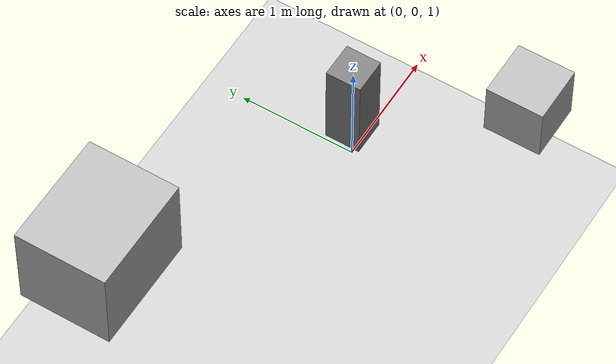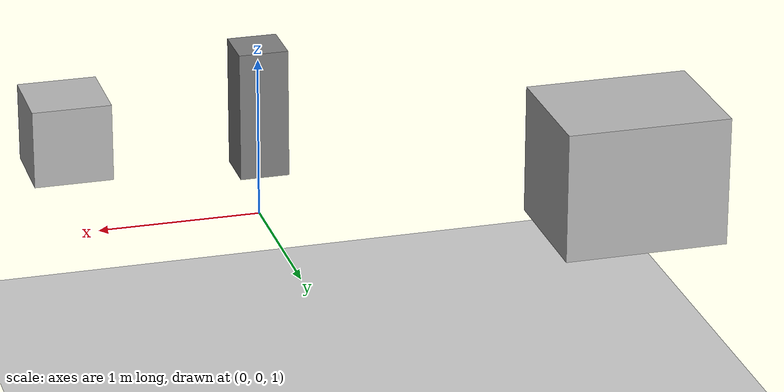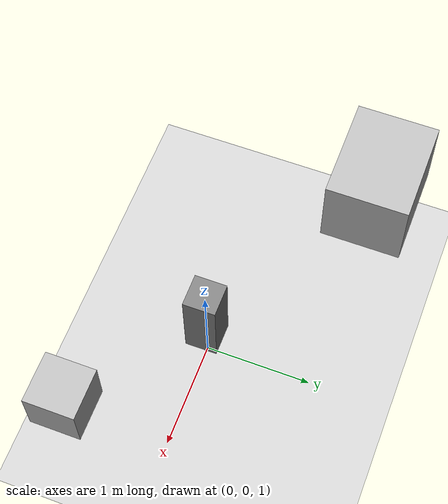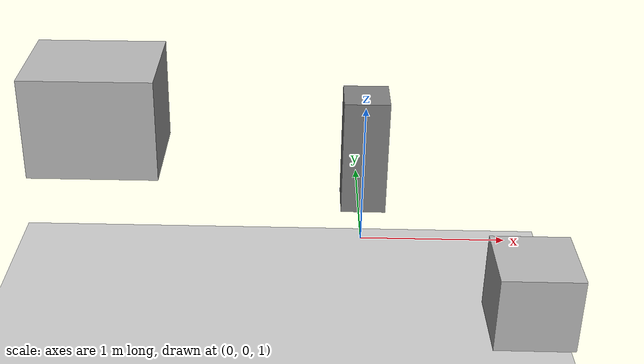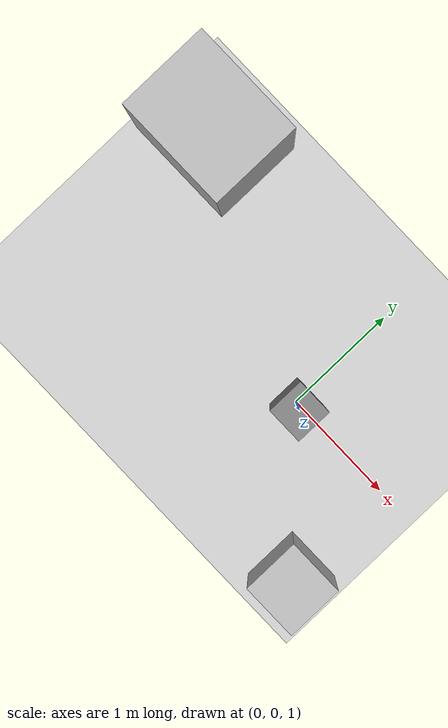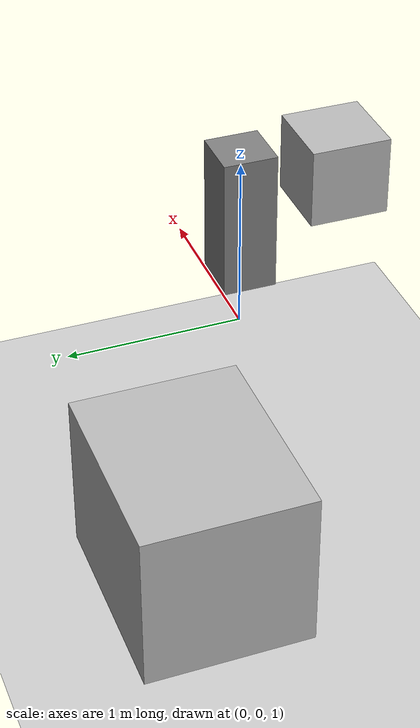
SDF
<?xml version="1.0" ?>
<sdf version="1.6">
  <world name="humanoid_simulation">
    <!-- Include the default ground plane -->
    <include>
      <uri>model://ground_plane</uri>
    </include>

    <!-- Include the default light source -->
    <include>
      <uri>model://sun</uri>
    </include>

    <!-- Add a simple humanoid robot model -->
    <model name='simple_humanoid'>
      <pose>0 0 1 0 0 0</pose>
      <link name='torso'>
        <pose>0 0 0.7 0 0 0</pose>
        <inertial>
          <mass>10.0</mass>
          <inertia>
            <ixx>0.4</ixx>
            <ixy>0</ixy>
            <ixz>0</ixz>
            <iyy>0.4</iyy>
            <iyz>0</iyz>
            <izz>0.2</izz>
          </inertia>
        </inertial>
        <visual name='visual'>
          <geometry>
            <box>
              <size>0.3 0.3 0.8</size>
            </box>
          </geometry>
          <material>
            <ambient>0.5 0.5 0.5 1</ambient>
            <diffuse>0.5 0.5 0.5 1</diffuse>
            <specular>0.1 0.1 0.1 1</specular>
          </material>
        </visual>
        <collision name='collision'>
          <geometry>
            <box>
              <size>0.3 0.3 0.8</size>
            </box>
          </geometry>
        </collision>
      </link>

      <link name='head'>
        <pose>0 0 0.5 0 0 0</pose>
        <inertial>
          <mass>2.0</mass>
          <inertia>
            <ixx>0.05</ixx>
            <ixy>0</ixy>
            <ixz>0</ixz>
            <iyy>0.05</iyy>
            <iyz>0</iyz>
            <izz>0.05</izz>
          </inertia>
        </inertial>
        <visual name='visual'>
          <geometry>
            <sphere>
              <radius>0.15</radius>
            </sphere>
          </geometry>
          <material>
            <ambient>0.7 0.7 0.7 1</ambient>
            <diffuse>0.7 0.7 0.7 1</diffuse>
            <specular>0.1 0.1 0.1 1</specular>
          </material>
        </visual>
        <collision name='collision'>
          <geometry>
            <sphere>
              <radius>0.15</radius>
            </sphere>
          </geometry>
        </collision>
      </link>

      <joint name='torso_to_head' type='fixed'>
        <parent>torso</parent>
        <child>head</child>
        <pose>0 0 0.4 0 0 0</pose>
      </joint>

      <!-- Add some obstacles for navigation -->
      <model name='table'>
        <pose>-2 1 0.5 0 0 0</pose>
        <link name='link'>
          <inertial>
            <mass>10.0</mass>
            <inertia>
              <ixx>1.0</ixx>
              <ixy>0</ixy>
              <ixz>0</ixz>
              <iyy>1.0</iyy>
              <iyz>0</iyz>
              <izz>1.0</izz>
            </inertia>
          </inertial>
          <visual name='visual'>
            <geometry>
              <box>
                <size>1 0.8 0.8</size>
              </box>
            </geometry>
          </visual>
          <collision name='collision'>
            <geometry>
              <box>
                <size>1 0.8 0.8</size>
              </box>
            </geometry>
          </collision>
        </link>
      </model>

      <model name='box_obstacle'>
        <pose>1 -1 0.25 0 0 0</pose>
        <link name='link'>
          <inertial>
            <mass>5.0</mass>
            <inertia>
              <ixx>0.5</ixx>
              <ixy>0</ixy>
              <ixz>0</ixz>
              <iyy>0.5</iyy>
              <iyz>0</iyz>
              <izz>0.5</izz>
            </inertia>
          </inertial>
          <visual name='visual'>
            <geometry>
              <box>
                <size>0.5 0.5 0.5</size>
              </box>
            </geometry>
          </visual>
          <collision name='collision'>
            <geometry>
              <box>
                <size>0.5 0.5 0.5</size>
              </box>
            </geometry>
          </collision>
        </link>
      </model>
    </model>

    <!-- Add plugins for physics and control -->
    <physics name="default_physics" default="0" type="ode">
      <max_step_size>0.001</max_step_size>
      <real_time_factor>1</real_time_factor>
      <real_time_update_rate>1000</real_time_update_rate>
    </physics>
  </world>
</sdf>
